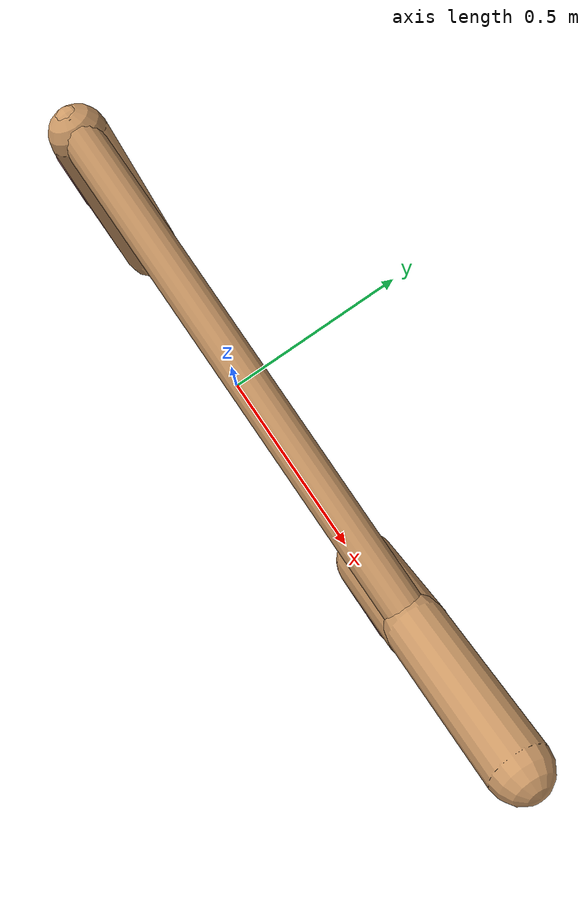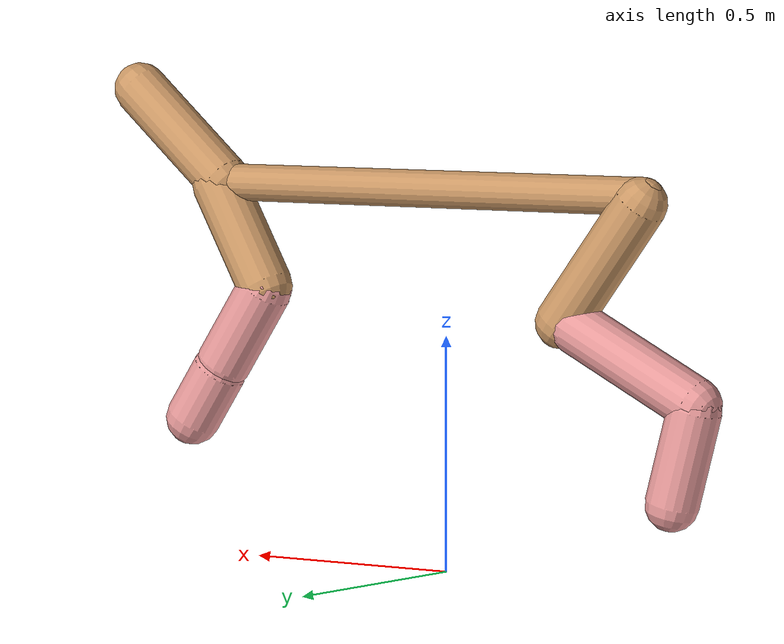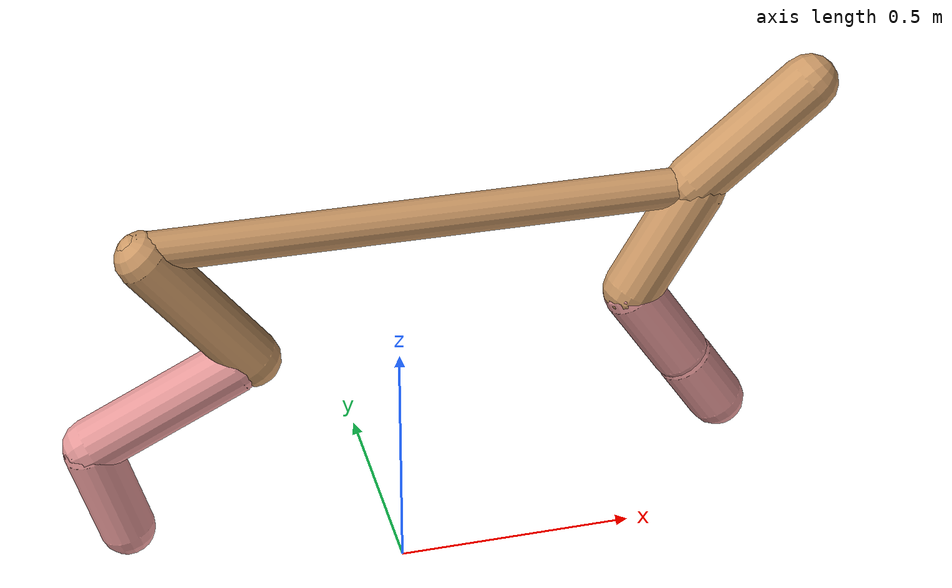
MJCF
<mujoco model="cheetah">
  <compiler angle="radian" coordinate="local" inertiafromgeom="true" settotalmass="14" />
  <default>
    <joint armature=".1" damping=".01" limited="true" solimplimit="0 .8 .03" solreflimit=".02 1" stiffness="8" />
    <geom conaffinity="0" condim="3" contype="1" friction="0.8 .1 .1" rgba="0.8 0.6 .4 1" solimp="0.0 0.8 0.01" solref="0.02 1" />
    <motor ctrllimited="true" ctrlrange="-1 1" />
  </default>
  <size nstack="300000" nuser_geom="1" />
  <option gravity="0 0 -9.81" timestep="0.01" />
  <worldbody>
    <body name="torso" pos="0.0 0.0 0.8086603587319037">
      <joint armature="0" axis="1 0 0" damping="0" limited="false" name="ignorex" pos="0 0 0" stiffness="0" type="slide" />
      <joint armature="0" axis="0 0 1" damping="0" limited="false" name="ignorez" pos="0 0 0" stiffness="0" type="slide" />
      <joint armature="0" axis="0 1 0" damping="0" limited="false" name="ignorey" pos="0 0 0" stiffness="0" type="hinge" />
      <geom fromto="-0.5 0.0 0.0 0.6112756466484662 0.0 0.0" name="torso" size="0.039734575798032995" type="capsule" />
      <geom axisangle="0 1 0 .87" name="head" pos="0.7112756466484663 0.0 0.1" size="0.05792740194307571 0.15" type="capsule" />

      <body name="bthigh" pos="-.5 0 0">
        <joint axis="0 1 0" damping="6" name="bthigh" pos="0 0 0" range="-.52 1.05" stiffness="240" type="hinge" />
        <geom axisangle="0 1 0 -3.8" name="bthigh" pos="0.10814106063517906 0.0 -0.14058337882573277" size="0.05667947681873876 0.15835233221705597" type="capsule" />
        <body name="bshin" pos="0.1762821212703581 0.0 -0.27116675765146553">
          <joint axis="0 1 0" damping="4.5" name="bshin" pos="0 0 0" range="-.785 .785" stiffness="180" type="hinge" />
          <geom axisangle="0 1 0 -2.03" name="bshin" pos="-0.15235450586020594 0.0 -0.07617725293010297" rgba="0.9 0.6 0.6 1" size="0.05667947681873876 0.16381275746591997" type="capsule" />
          <body name="bfoot" pos="-0.30470901172041187 0.0 -0.15235450586020594">
            <joint axis="0 1 0" damping="3" name="bfoot" pos="0 0 0" range="-.4 .785" stiffness="120" type="hinge" />
            <geom axisangle="0 1 0 -.27" name="bfoot" pos="0.03255758434931359 0.0 -0.10526952272944728" rgba="0.9 0.6 0.6 1" size="0.05667947681873876 0.10265599467864318" type="capsule" />
            <inertial mass="10" />
          </body>
        </body>
      </body>
      <body name="fthigh" pos="0.6112756466484663 0.0 0.0">
        <joint axis="0 1 0" damping="4.5" name="fthigh" pos="0 0 0" range="-1.5 0.8" stiffness="180" type="hinge" />
        <geom axisangle="0 1 0 .52" name="fthigh" pos="-0.06610391132668895 0.0 -0.11332099084575246" size="0.059692134266788606 0.12526768661829948" type="capsule" />
        <body name="fshin" pos="-0.1322078226533779 0.0 -0.22664198169150493">
          <joint axis="0 1 0" damping="3" name="fshin" pos="0 0 0" range="-1.2 1.1" stiffness="120" type="hinge" />
          <geom axisangle="0 1 0 -.6" name="fshin" pos="0.061391858472924075 0.0 -0.08500411173174102" rgba="0.9 0.6 0.6 1" size="0.059692134266788606 0.09983740437247929" type="capsule" />
          <body name="ffoot" pos="0.12278371694584815 0.0 -0.17000822346348204">
            <joint axis="0 1 0" damping="1.5" name="ffoot" pos="0 0 0" range="-3.1 -0.3" stiffness="60" type="hinge" />
            <geom axisangle="0 1 0 -.6" name="ffoot" pos="0.04279931202127921 0.0 -0.06657670758865655" rgba="0.9 0.6 0.6 1" size="0.059692134266788606 0.06593036137805236" type="capsule" />
            <inertial mass="10" />
          </body>
        </body>
      </body>
    </body>
  </worldbody>
  <actuator>
    <motor gear="120" joint="bthigh" name="bthigh" />
    <motor gear="90" joint="bshin" name="bshin" />
    <motor gear="60" joint="bfoot" name="bfoot" />
    <motor gear="120" joint="fthigh" name="fthigh" />
    <motor gear="60" joint="fshin" name="fshin" />
    <motor gear="30" joint="ffoot" name="ffoot" />
  </actuator>
</mujoco>
